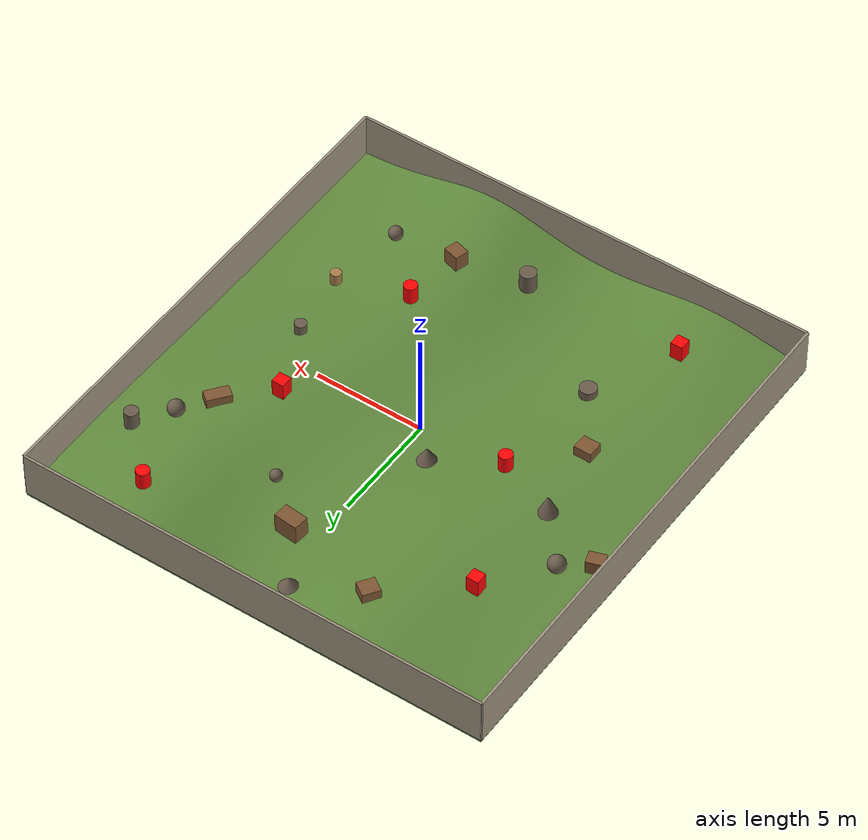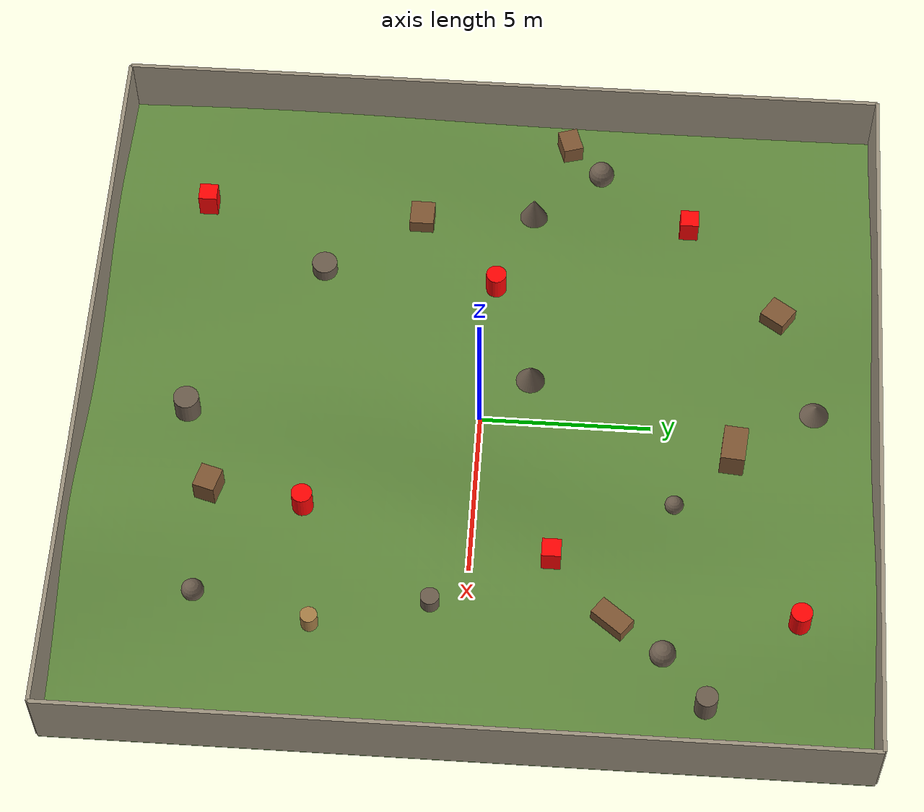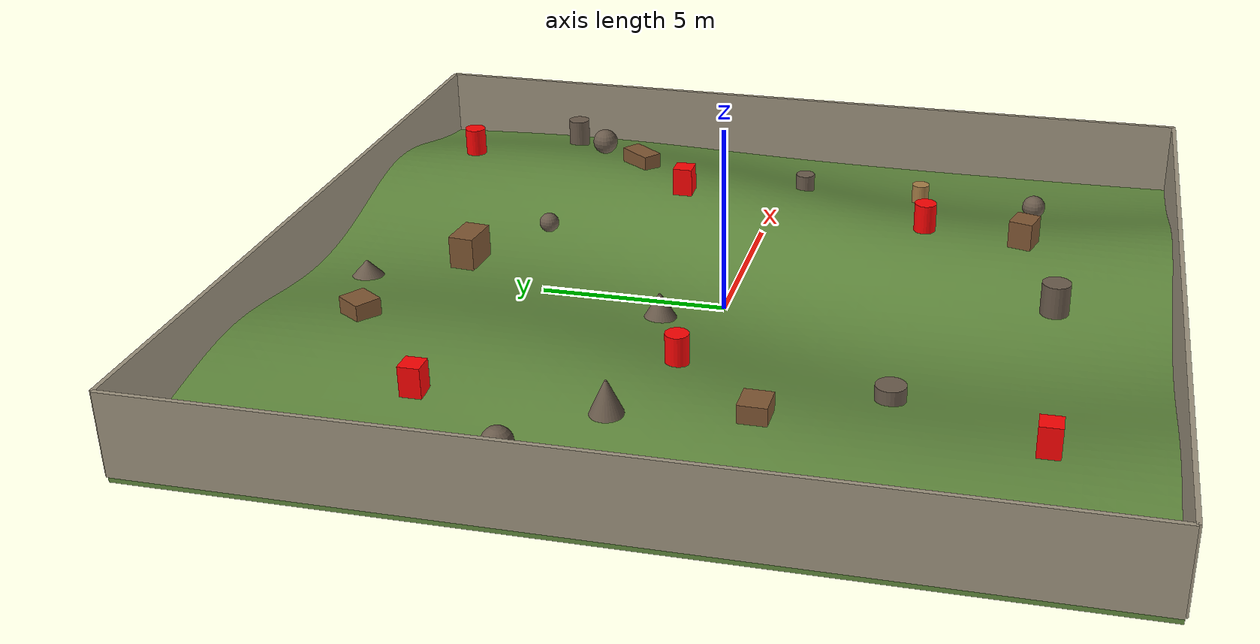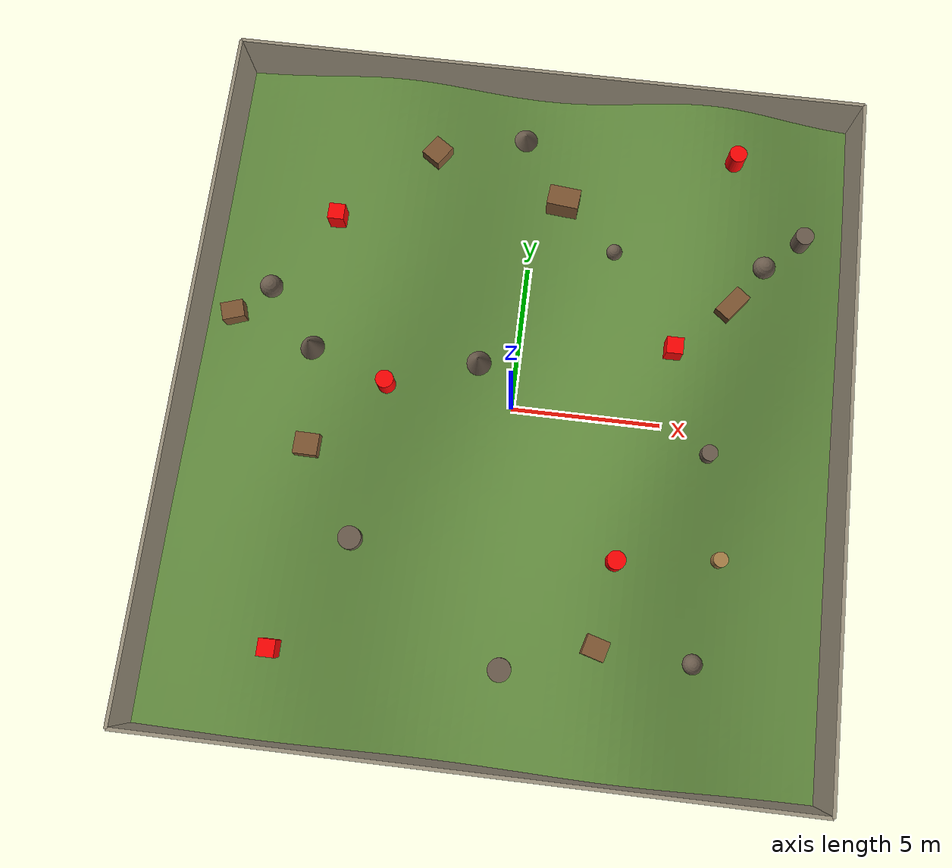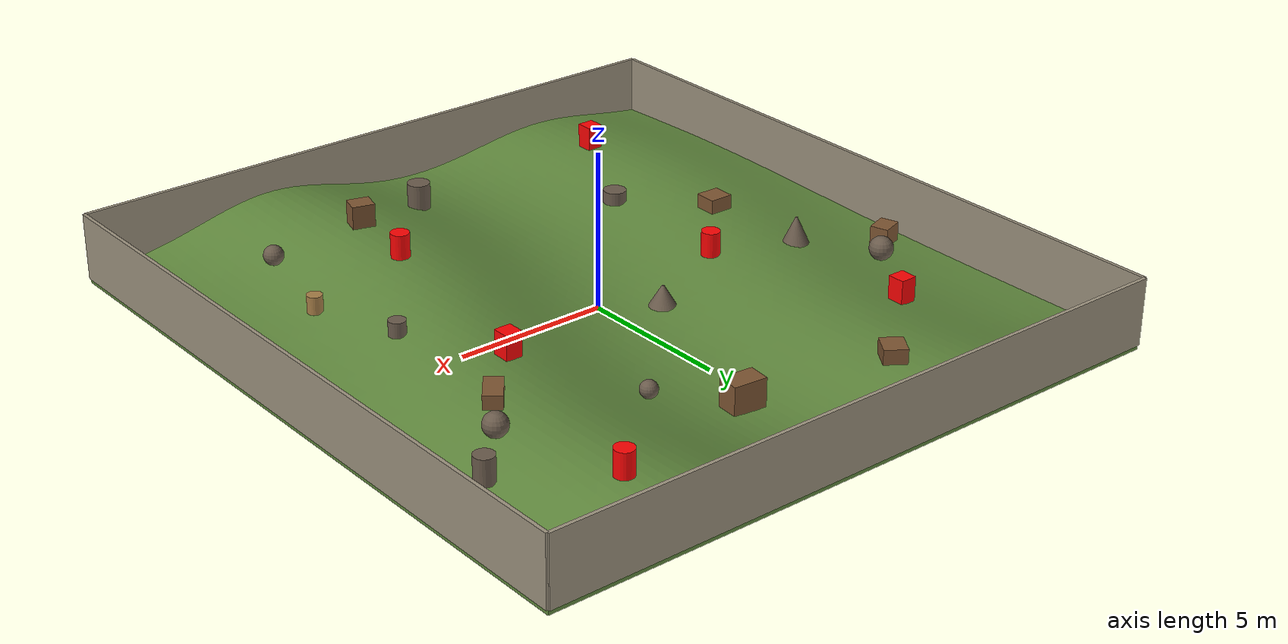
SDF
<?xml version='1.0' encoding='utf-8'?>
<sdf version="1.7">
  <world name="terrain_3">
    <gravity>0 0 -9.8</gravity>
    <plugin name="gazebo_ros_state" filename="libgazebo_ros_state.so">
      <ros>
        <namespace>/gazebo</namespace>
      </ros>
    </plugin>
    <physics name="ode_physics" type="ode">
      <max_step_size>0.001</max_step_size>
      <real_time_factor>1</real_time_factor>
      <real_time_update_rate>1000</real_time_update_rate>
      <ode>
        <solver>
          <type>quick</type>
          <iters>150</iters>
          <sor>1.3</sor>
        </solver>
        <constraints>
          <cfm>0</cfm>
          <erp>0.2</erp>
          <contact_max_correcting_vel>0.2</contact_max_correcting_vel>
          <contact_surface_layer>0.001</contact_surface_layer>
        </constraints>
      </ode>
    </physics>
    <light name="sun" type="directional">
      <pose>0 0 42 0 0 0</pose>
      <diffuse>0.92 0.91 0.88 1</diffuse>
      <specular>0.18 0.18 0.16 1</specular>
      <direction>-0.35 -0.28 -0.9</direction>
      <cast_shadows>true</cast_shadows>
    </light>
    <light name="fill" type="point">
      <pose>0 0 6 0 0 0</pose>
      <diffuse>0.35 0.36 0.34 1</diffuse>
      <specular>0.02 0.02 0.02 1</specular>
      <cast_shadows>false</cast_shadows>
      <attenuation>
        <range>80</range>
        <constant>0.5</constant>
        <linear>0.02</linear>
      </attenuation>
    </light>
    <scene>
      <ambient>0.52 0.56 0.48 1</ambient>
      <background>0.58 0.76 0.92 1</background>
    </scene>
    <gui fullscreen="false">
      <camera name="user_camera">
        <pose>15.09375 -20.7 19.55 0 0.65 2.2</pose>
        <view_controller>orbit</view_controller>
      </camera>
    </gui>
    <model name="terrain_3_structure">
      <static>true</static>
      <link name="structure">
        <collision name="ground_surface_collision">
          <pose>0 0 0 0 0 0</pose>
          <geometry>
            <mesh>
              <uri>3DModel/terrain/surfaces/terrain_3_ground_surface.stl</uri>
            </mesh>
          </geometry>
          <max_contacts>40</max_contacts>
          <surface>
            <friction>
              <ode>
                <mu>8</mu>
                <mu2>8</mu2>
              </ode>
            </friction>
            <contact>
              <ode>
                <kp>1e7</kp>
                <kd>1000</kd>
                <max_vel>0.1</max_vel>
                <min_depth>0.001</min_depth>
              </ode>
            </contact>
          </surface>
        </collision>
        <visual name="ground_surface_visual">
          <pose>0 0 0 0 0 0</pose>
          <geometry>
            <mesh>
              <uri>3DModel/terrain/surfaces/terrain_3_ground_surface.stl</uri>
            </mesh>
          </geometry>
          <material>
            <ambient>0.38 0.54 0.24 1</ambient>
            <diffuse>0.38 0.54 0.24 1</diffuse>
          </material>
        </visual>
        <collision name="rock_box_0_collision">
          <pose>-6.46875 -2.15625 0.952421703 0 0 -0.0157018025</pose>
          <geometry>
            <box>
              <size>0.790625 0.71875 0.4671875</size>
            </box>
          </geometry>
          <max_contacts>40</max_contacts>
          <surface>
            <friction>
              <ode>
                <mu>2</mu>
                <mu2>2</mu2>
              </ode>
            </friction>
            <contact>
              <ode>
                <kp>1e7</kp>
                <kd>1000</kd>
                <max_vel>0.1</max_vel>
                <min_depth>0.001</min_depth>
              </ode>
            </contact>
          </surface>
        </collision>
        <visual name="rock_box_0_visual">
          <pose>-6.46875 -2.15625 0.952421703 0 0 -0.0157018025</pose>
          <geometry>
            <box>
              <size>0.790625 0.71875 0.4671875</size>
            </box>
          </geometry>
          <material>
            <ambient>0.50 0.34 0.20 1</ambient>
            <diffuse>0.50 0.34 0.20 1</diffuse>
          </material>
        </visual>
        <collision name="rock_round_1_collision">
          <pose>2.875 5.75 0.69128339 0 0 0</pose>
          <geometry>
            <sphere>
              <radius>0.273125</radius>
            </sphere>
          </geometry>
          <max_contacts>40</max_contacts>
          <surface>
            <friction>
              <ode>
                <mu>2</mu>
                <mu2>2</mu2>
              </ode>
            </friction>
            <contact>
              <ode>
                <kp>1e7</kp>
                <kd>1000</kd>
                <max_vel>0.1</max_vel>
                <min_depth>0.001</min_depth>
              </ode>
            </contact>
          </surface>
        </collision>
        <visual name="rock_round_1_visual">
          <pose>2.875 5.75 0.69128339 0 0 0</pose>
          <geometry>
            <sphere>
              <radius>0.273125</radius>
            </sphere>
          </geometry>
          <material>
            <ambient>0.42 0.36 0.30 1</ambient>
            <diffuse>0.42 0.36 0.30 1</diffuse>
          </material>
        </visual>
        <collision name="stone_column_2_collision">
          <pose>7.1875 -4.3125 0.735942819 0 0 0</pose>
          <geometry>
            <cylinder>
              <radius>0.244375</radius>
              <length>0.5750000000000001</length>
            </cylinder>
          </geometry>
          <max_contacts>40</max_contacts>
          <surface>
            <friction>
              <ode>
                <mu>2</mu>
                <mu2>2</mu2>
              </ode>
            </friction>
            <contact>
              <ode>
                <kp>1e7</kp>
                <kd>1000</kd>
                <max_vel>0.1</max_vel>
                <min_depth>0.001</min_depth>
              </ode>
            </contact>
          </surface>
        </collision>
        <visual name="stone_column_2_visual">
          <pose>7.1875 -4.3125 0.735942819 0 0 0</pose>
          <geometry>
            <cylinder>
              <radius>0.244375</radius>
              <length>0.5750000000000001</length>
            </cylinder>
          </geometry>
          <material>
            <ambient>0.66 0.50 0.28 1</ambient>
            <diffuse>0.66 0.50 0.28 1</diffuse>
          </material>
        </visual>
        <collision name="rock_box_3_collision">
          <pose>-3.59375 8.625 0.913835771 0 0 0.974073031</pose>
          <geometry>
            <box>
              <size>0.790625 0.71875 0.4671875</size>
            </box>
          </geometry>
          <max_contacts>40</max_contacts>
          <surface>
            <friction>
              <ode>
                <mu>2</mu>
                <mu2>2</mu2>
              </ode>
            </friction>
            <contact>
              <ode>
                <kp>1e7</kp>
                <kd>1000</kd>
                <max_vel>0.1</max_vel>
                <min_depth>0.001</min_depth>
              </ode>
            </contact>
          </surface>
        </collision>
        <visual name="rock_box_3_visual">
          <pose>-3.59375 8.625 0.913835771 0 0 0.974073031</pose>
          <geometry>
            <box>
              <size>0.790625 0.71875 0.4671875</size>
            </box>
          </geometry>
          <material>
            <ambient>0.50 0.34 0.20 1</ambient>
            <diffuse>0.50 0.34 0.20 1</diffuse>
          </material>
        </visual>
        <collision name="boundary_0_collision">
          <pose>0 -11.5 1.00625 0 0 0</pose>
          <geometry>
            <box>
              <size>21.5625 0.115 2.15625</size>
            </box>
          </geometry>
          <max_contacts>40</max_contacts>
          <surface>
            <friction>
              <ode>
                <mu>2</mu>
                <mu2>2</mu2>
              </ode>
            </friction>
            <contact>
              <ode>
                <kp>1e7</kp>
                <kd>1000</kd>
                <max_vel>0.1</max_vel>
                <min_depth>0.001</min_depth>
              </ode>
            </contact>
          </surface>
        </collision>
        <visual name="boundary_0_visual">
          <pose>0 -11.5 1.00625 0 0 0</pose>
          <geometry>
            <box>
              <size>21.5625 0.115 2.15625</size>
            </box>
          </geometry>
          <material>
            <ambient>0.62 0.58 0.50 1</ambient>
            <diffuse>0.62 0.58 0.50 1</diffuse>
          </material>
        </visual>
        <collision name="boundary_1_collision">
          <pose>10.78125 0 1.00625 0 0 1.57079633</pose>
          <geometry>
            <box>
              <size>23 0.115 2.15625</size>
            </box>
          </geometry>
          <max_contacts>40</max_contacts>
          <surface>
            <friction>
              <ode>
                <mu>2</mu>
                <mu2>2</mu2>
              </ode>
            </friction>
            <contact>
              <ode>
                <kp>1e7</kp>
                <kd>1000</kd>
                <max_vel>0.1</max_vel>
                <min_depth>0.001</min_depth>
              </ode>
            </contact>
          </surface>
        </collision>
        <visual name="boundary_1_visual">
          <pose>10.78125 0 1.00625 0 0 1.57079633</pose>
          <geometry>
            <box>
              <size>23 0.115 2.15625</size>
            </box>
          </geometry>
          <material>
            <ambient>0.62 0.58 0.50 1</ambient>
            <diffuse>0.62 0.58 0.50 1</diffuse>
          </material>
        </visual>
        <collision name="boundary_2_collision">
          <pose>0 11.5 1.00625 0 0 3.14159265</pose>
          <geometry>
            <box>
              <size>21.5625 0.115 2.15625</size>
            </box>
          </geometry>
          <max_contacts>40</max_contacts>
          <surface>
            <friction>
              <ode>
                <mu>2</mu>
                <mu2>2</mu2>
              </ode>
            </friction>
            <contact>
              <ode>
                <kp>1e7</kp>
                <kd>1000</kd>
                <max_vel>0.1</max_vel>
                <min_depth>0.001</min_depth>
              </ode>
            </contact>
          </surface>
        </collision>
        <visual name="boundary_2_visual">
          <pose>0 11.5 1.00625 0 0 3.14159265</pose>
          <geometry>
            <box>
              <size>21.5625 0.115 2.15625</size>
            </box>
          </geometry>
          <material>
            <ambient>0.62 0.58 0.50 1</ambient>
            <diffuse>0.62 0.58 0.50 1</diffuse>
          </material>
        </visual>
        <collision name="boundary_3_collision">
          <pose>-10.78125 0 1.00625 0 0 -1.57079633</pose>
          <geometry>
            <box>
              <size>23 0.115 2.15625</size>
            </box>
          </geometry>
          <max_contacts>40</max_contacts>
          <surface>
            <friction>
              <ode>
                <mu>2</mu>
                <mu2>2</mu2>
              </ode>
            </friction>
            <contact>
              <ode>
                <kp>1e7</kp>
                <kd>1000</kd>
                <max_vel>0.1</max_vel>
                <min_depth>0.001</min_depth>
              </ode>
            </contact>
          </surface>
        </collision>
        <visual name="boundary_3_visual">
          <pose>-10.78125 0 1.00625 0 0 -1.57079633</pose>
          <geometry>
            <box>
              <size>23 0.115 2.15625</size>
            </box>
          </geometry>
          <material>
            <ambient>0.62 0.58 0.50 1</ambient>
            <diffuse>0.62 0.58 0.50 1</diffuse>
          </material>
        </visual>
        <collision name="irregular_prop_0_collision">
          <pose>6.90887802 4.11231541 1.25627862 0 0 -2.23321854</pose>
          <geometry>
            <box>
              <size>1.08607201 0.571727139 0.437740642</size>
            </box>
          </geometry>
          <max_contacts>40</max_contacts>
          <surface>
            <friction>
              <ode>
                <mu>2</mu>
                <mu2>2</mu2>
              </ode>
            </friction>
            <contact>
              <ode>
                <kp>1e7</kp>
                <kd>1000</kd>
                <max_vel>0.1</max_vel>
                <min_depth>0.001</min_depth>
              </ode>
            </contact>
          </surface>
        </collision>
        <visual name="irregular_prop_0_visual">
          <pose>6.90887802 4.11231541 1.25627862 0 0 -2.23321854</pose>
          <geometry>
            <box>
              <size>1.08607201 0.571727139 0.437740642</size>
            </box>
          </geometry>
          <material>
            <ambient>0.50 0.34 0.20 1</ambient>
            <diffuse>0.50 0.34 0.20 1</diffuse>
          </material>
        </visual>
        <collision name="irregular_prop_1_collision">
          <pose>-4.66218717 -4.97635042 0.677755533 0 0 1.16385764</pose>
          <geometry>
            <cylinder>
              <radius>0.376704444662909</radius>
              <length>0.4266029525812986</length>
            </cylinder>
          </geometry>
          <max_contacts>40</max_contacts>
          <surface>
            <friction>
              <ode>
                <mu>2</mu>
                <mu2>2</mu2>
              </ode>
            </friction>
            <contact>
              <ode>
                <kp>1e7</kp>
                <kd>1000</kd>
                <max_vel>0.1</max_vel>
                <min_depth>0.001</min_depth>
              </ode>
            </contact>
          </surface>
        </collision>
        <visual name="irregular_prop_1_visual">
          <pose>-4.66218717 -4.97635042 0.677755533 0 0 1.16385764</pose>
          <geometry>
            <cylinder>
              <radius>0.376704444662909</radius>
              <length>0.4266029525812986</length>
            </cylinder>
          </geometry>
          <material>
            <ambient>0.42 0.36 0.30 1</ambient>
            <diffuse>0.42 0.36 0.30 1</diffuse>
          </material>
        </visual>
        <collision name="irregular_prop_2_collision">
          <pose>7.88971715 5.54254733 1.28310277 0 0 2.89013118</pose>
          <geometry>
            <sphere>
              <radius>0.3729867678205133</radius>
            </sphere>
          </geometry>
          <max_contacts>40</max_contacts>
          <surface>
            <friction>
              <ode>
                <mu>2</mu>
                <mu2>2</mu2>
              </ode>
            </friction>
            <contact>
              <ode>
                <kp>1e7</kp>
                <kd>1000</kd>
                <max_vel>0.1</max_vel>
                <min_depth>0.001</min_depth>
              </ode>
            </contact>
          </surface>
        </collision>
        <visual name="irregular_prop_2_visual">
          <pose>7.88971715 5.54254733 1.28310277 0 0 2.89013118</pose>
          <geometry>
            <sphere>
              <radius>0.3729867678205133</radius>
            </sphere>
          </geometry>
          <material>
            <ambient>0.42 0.36 0.30 1</ambient>
            <diffuse>0.42 0.36 0.30 1</diffuse>
          </material>
        </visual>
        <collision name="irregular_prop_3_collision">
          <pose>0 0 0 0 0 0</pose>
          <geometry>
            <mesh>
              <uri>3DModel/terrain/surfaces/terrain_3_irregular_prop_3.stl</uri>
            </mesh>
          </geometry>
          <max_contacts>40</max_contacts>
          <surface>
            <friction>
              <ode>
                <mu>8</mu>
                <mu2>8</mu2>
              </ode>
            </friction>
            <contact>
              <ode>
                <kp>1e7</kp>
                <kd>1000</kd>
                <max_vel>0.1</max_vel>
                <min_depth>0.001</min_depth>
              </ode>
            </contact>
          </surface>
        </collision>
        <visual name="irregular_prop_3_visual">
          <pose>0 0 0 0 0 0</pose>
          <geometry>
            <mesh>
              <uri>3DModel/terrain/surfaces/terrain_3_irregular_prop_3.stl</uri>
            </mesh>
          </geometry>
          <material>
            <ambient>0.42 0.36 0.30 1</ambient>
            <diffuse>0.42 0.36 0.30 1</diffuse>
          </material>
        </visual>
        <collision name="irregular_prop_4_collision">
          <pose>-9.77912039 2.18786757 0.436348553 0 0 1.88401226</pose>
          <geometry>
            <box>
              <size>0.599985752 0.755719187 0.617978487</size>
            </box>
          </geometry>
          <max_contacts>40</max_contacts>
          <surface>
            <friction>
              <ode>
                <mu>2</mu>
                <mu2>2</mu2>
              </ode>
            </friction>
            <contact>
              <ode>
                <kp>1e7</kp>
                <kd>1000</kd>
                <max_vel>0.1</max_vel>
                <min_depth>0.001</min_depth>
              </ode>
            </contact>
          </surface>
        </collision>
        <visual name="irregular_prop_4_visual">
          <pose>-9.77912039 2.18786757 0.436348553 0 0 1.88401226</pose>
          <geometry>
            <box>
              <size>0.599985752 0.755719187 0.617978487</size>
            </box>
          </geometry>
          <material>
            <ambient>0.50 0.34 0.20 1</ambient>
            <diffuse>0.50 0.34 0.20 1</diffuse>
          </material>
        </visual>
        <collision name="irregular_prop_5_collision">
          <pose>0.596500179 -8.4936315 0.947151085 0 0 1.3066875</pose>
          <geometry>
            <cylinder>
              <radius>0.3707488929107403</radius>
              <length>0.8595618172073382</length>
            </cylinder>
          </geometry>
          <max_contacts>40</max_contacts>
          <surface>
            <friction>
              <ode>
                <mu>2</mu>
                <mu2>2</mu2>
              </ode>
            </friction>
            <contact>
              <ode>
                <kp>1e7</kp>
                <kd>1000</kd>
                <max_vel>0.1</max_vel>
                <min_depth>0.001</min_depth>
              </ode>
            </contact>
          </surface>
        </collision>
        <visual name="irregular_prop_5_visual">
          <pose>0.596500179 -8.4936315 0.947151085 0 0 1.3066875</pose>
          <geometry>
            <cylinder>
              <radius>0.3707488929107403</radius>
              <length>0.8595618172073382</length>
            </cylinder>
          </geometry>
          <material>
            <ambient>0.42 0.36 0.30 1</ambient>
            <diffuse>0.42 0.36 0.30 1</diffuse>
          </material>
        </visual>
        <collision name="irregular_prop_6_collision">
          <pose>6.55230586 -7.63756672 0.87696483 0 0 0.14775727</pose>
          <geometry>
            <sphere>
              <radius>0.3223171556145211</radius>
            </sphere>
          </geometry>
          <max_contacts>40</max_contacts>
          <surface>
            <friction>
              <ode>
                <mu>2</mu>
                <mu2>2</mu2>
              </ode>
            </friction>
            <contact>
              <ode>
                <kp>1e7</kp>
                <kd>1000</kd>
                <max_vel>0.1</max_vel>
                <min_depth>0.001</min_depth>
              </ode>
            </contact>
          </surface>
        </collision>
        <visual name="irregular_prop_6_visual">
          <pose>6.55230586 -7.63756672 0.87696483 0 0 0.14775727</pose>
          <geometry>
            <sphere>
              <radius>0.3223171556145211</radius>
            </sphere>
          </geometry>
          <material>
            <ambient>0.42 0.36 0.30 1</ambient>
            <diffuse>0.42 0.36 0.30 1</diffuse>
          </material>
        </visual>
        <collision name="irregular_prop_7_collision">
          <pose>0 0 0 0 0 0</pose>
          <geometry>
            <mesh>
              <uri>3DModel/terrain/surfaces/terrain_3_irregular_prop_7.stl</uri>
            </mesh>
          </geometry>
          <max_contacts>40</max_contacts>
          <surface>
            <friction>
              <ode>
                <mu>8</mu>
                <mu2>8</mu2>
              </ode>
            </friction>
            <contact>
              <ode>
                <kp>1e7</kp>
                <kd>1000</kd>
                <max_vel>0.1</max_vel>
                <min_depth>0.001</min_depth>
              </ode>
            </contact>
          </surface>
        </collision>
        <visual name="irregular_prop_7_visual">
          <pose>0 0 0 0 0 0</pose>
          <geometry>
            <mesh>
              <uri>3DModel/terrain/surfaces/terrain_3_irregular_prop_7.stl</uri>
            </mesh>
          </geometry>
          <material>
            <ambient>0.42 0.36 0.30 1</ambient>
            <diffuse>0.42 0.36 0.30 1</diffuse>
          </material>
        </visual>
        <collision name="irregular_prop_8_collision">
          <pose>3.44821226 -7.49859829 1.45129688 0 0 -1.84800182</pose>
          <geometry>
            <box>
              <size>0.638164364 0.730013705 0.750693789</size>
            </box>
          </geometry>
          <max_contacts>40</max_contacts>
          <surface>
            <friction>
              <ode>
                <mu>2</mu>
                <mu2>2</mu2>
              </ode>
            </friction>
            <contact>
              <ode>
                <kp>1e7</kp>
                <kd>1000</kd>
                <max_vel>0.1</max_vel>
                <min_depth>0.001</min_depth>
              </ode>
            </contact>
          </surface>
        </collision>
        <visual name="irregular_prop_8_visual">
          <pose>3.44821226 -7.49859829 1.45129688 0 0 -1.84800182</pose>
          <geometry>
            <box>
              <size>0.638164364 0.730013705 0.750693789</size>
            </box>
          </geometry>
          <material>
            <ambient>0.50 0.34 0.20 1</ambient>
            <diffuse>0.50 0.34 0.20 1</diffuse>
          </material>
        </visual>
        <collision name="irregular_prop_9_collision">
          <pose>9.16649709 6.78469233 1.02531175 0 0 -2.08421318</pose>
          <geometry>
            <cylinder>
              <radius>0.30991242413457737</radius>
              <length>0.8232788047438537</length>
            </cylinder>
          </geometry>
          <max_contacts>40</max_contacts>
          <surface>
            <friction>
              <ode>
                <mu>2</mu>
                <mu2>2</mu2>
              </ode>
            </friction>
            <contact>
              <ode>
                <kp>1e7</kp>
                <kd>1000</kd>
                <max_vel>0.1</max_vel>
                <min_depth>0.001</min_depth>
              </ode>
            </contact>
          </surface>
        </collision>
        <visual name="irregular_prop_9_visual">
          <pose>9.16649709 6.78469233 1.02531175 0 0 -2.08421318</pose>
          <geometry>
            <cylinder>
              <radius>0.30991242413457737</radius>
              <length>0.8232788047438537</length>
            </cylinder>
          </geometry>
          <material>
            <ambient>0.42 0.36 0.30 1</ambient>
            <diffuse>0.42 0.36 0.30 1</diffuse>
          </material>
        </visual>
        <collision name="irregular_prop_10_collision">
          <pose>-8.62726043 3.19524067 0.615970121 0 0 0.92838785</pose>
          <geometry>
            <sphere>
              <radius>0.3875258442588971</radius>
            </sphere>
          </geometry>
          <max_contacts>40</max_contacts>
          <surface>
            <friction>
              <ode>
                <mu>2</mu>
                <mu2>2</mu2>
              </ode>
            </friction>
            <contact>
              <ode>
                <kp>1e7</kp>
                <kd>1000</kd>
                <max_vel>0.1</max_vel>
                <min_depth>0.001</min_depth>
              </ode>
            </contact>
          </surface>
        </collision>
        <visual name="irregular_prop_10_visual">
          <pose>-8.62726043 3.19524067 0.615970121 0 0 0.92838785</pose>
          <geometry>
            <sphere>
              <radius>0.3875258442588971</radius>
            </sphere>
          </geometry>
          <material>
            <ambient>0.42 0.36 0.30 1</ambient>
            <diffuse>0.42 0.36 0.30 1</diffuse>
          </material>
        </visual>
        <collision name="irregular_prop_11_collision">
          <pose>0 0 0 0 0 0</pose>
          <geometry>
            <mesh>
              <uri>3DModel/terrain/surfaces/terrain_3_irregular_prop_11.stl</uri>
            </mesh>
          </geometry>
          <max_contacts>40</max_contacts>
          <surface>
            <friction>
              <ode>
                <mu>8</mu>
                <mu2>8</mu2>
              </ode>
            </friction>
            <contact>
              <ode>
                <kp>1e7</kp>
                <kd>1000</kd>
                <max_vel>0.1</max_vel>
                <min_depth>0.001</min_depth>
              </ode>
            </contact>
          </surface>
        </collision>
        <visual name="irregular_prop_11_visual">
          <pose>0 0 0 0 0 0</pose>
          <geometry>
            <mesh>
              <uri>3DModel/terrain/surfaces/terrain_3_irregular_prop_11.stl</uri>
            </mesh>
          </geometry>
          <material>
            <ambient>0.42 0.36 0.30 1</ambient>
            <diffuse>0.42 0.36 0.30 1</diffuse>
          </material>
        </visual>
        <collision name="irregular_prop_12_collision">
          <pose>0.942192993 7.42165578 0.642770087 0 0 -0.0976127434</pose>
          <geometry>
            <box>
              <size>1.08271553 0.701748873 0.912867309</size>
            </box>
          </geometry>
          <max_contacts>40</max_contacts>
          <surface>
            <friction>
              <ode>
                <mu>2</mu>
                <mu2>2</mu2>
              </ode>
            </friction>
            <contact>
              <ode>
                <kp>1e7</kp>
                <kd>1000</kd>
                <max_vel>0.1</max_vel>
                <min_depth>0.001</min_depth>
              </ode>
            </contact>
          </surface>
        </collision>
        <visual name="irregular_prop_12_visual">
          <pose>0.942192993 7.42165578 0.642770087 0 0 -0.0976127434</pose>
          <geometry>
            <box>
              <size>1.08271553 0.701748873 0.912867309</size>
            </box>
          </geometry>
          <material>
            <ambient>0.50 0.34 0.20 1</ambient>
            <diffuse>0.50 0.34 0.20 1</diffuse>
          </material>
        </visual>
        <collision name="irregular_prop_13_collision">
          <pose>6.53913204 -0.975745394 1.07290332 0 0 -0.606225655</pose>
          <geometry>
            <cylinder>
              <radius>0.26815287130213666</radius>
              <length>0.48223083261854904</length>
            </cylinder>
          </geometry>
          <max_contacts>40</max_contacts>
          <surface>
            <friction>
              <ode>
                <mu>2</mu>
                <mu2>2</mu2>
              </ode>
            </friction>
            <contact>
              <ode>
                <kp>1e7</kp>
                <kd>1000</kd>
                <max_vel>0.1</max_vel>
                <min_depth>0.001</min_depth>
              </ode>
            </contact>
          </surface>
        </collision>
        <visual name="irregular_prop_13_visual">
          <pose>6.53913204 -0.975745394 1.07290332 0 0 -0.606225655</pose>
          <geometry>
            <cylinder>
              <radius>0.26815287130213666</radius>
              <length>0.48223083261854904</length>
            </cylinder>
          </geometry>
          <material>
            <ambient>0.42 0.36 0.30 1</ambient>
            <diffuse>0.42 0.36 0.30 1</diffuse>
          </material>
        </visual>
      </link>
    </model>
    <model name="moving_obstacle_1">
      <static>true</static>
      <pose>-6.59295721 -8.66219925 1.10740447 0 0 0</pose>
      <link name="obstacle">
        <collision name="body_collision">
          <pose>0 0 0 0 0 0</pose>
          <geometry>
            <box>
              <size>0.55 0.55 0.8</size>
            </box>
          </geometry>
          <max_contacts>40</max_contacts>
          <surface>
            <friction>
              <ode>
                <mu>2</mu>
                <mu2>2</mu2>
              </ode>
            </friction>
            <contact>
              <ode>
                <kp>1e7</kp>
                <kd>1000</kd>
                <max_vel>0.1</max_vel>
                <min_depth>0.001</min_depth>
              </ode>
            </contact>
          </surface>
        </collision>
        <visual name="body_visual">
          <pose>0 0 0 0 0 0</pose>
          <geometry>
            <box>
              <size>0.55 0.55 0.8</size>
            </box>
          </geometry>
          <material>
            <ambient>1 0.015 0.015 1</ambient>
            <diffuse>1 0.015 0.015 1</diffuse>
            <emissive>0.25 0 0 1</emissive>
          </material>
        </visual>
      </link>
      <plugin name="path_motion" filename="libmultimap_obstacle_motion.so">
        <speed>0.25</speed>
        <start_delay>0.0</start_delay>
        <waypoints>
          <point>-6.59295721 -8.66219925 1.10740447</point>
          <point>-6.62219242 -8.53083086 1.10795941</point>
          <point>-6.65142764 -8.39946246 1.10855894</point>
          <point>-6.68066285 -8.26809406 1.10919886</point>
          <point>-6.70989806 -8.13672566 1.10987434</point>
          <point>-6.73913327 -8.00535727 1.11057987</point>
          <point>-6.76836849 -7.87398887 1.11130924</point>
          <point>-6.7976037 -7.74262047 1.11205556</point>
          <point>-6.82683891 -7.61125208 1.11281124</point>
          <point>-6.85607412 -7.47988368 1.11356794</point>
          <point>-6.88530934 -7.34851528 1.11431662</point>
          <point>-6.91454455 -7.21714689 1.11504753</point>
          <point>-6.94377976 -7.08577849 1.11575019</point>
          <point>-6.97301497 -6.95441009 1.11641343</point>
          <point>-7.00225019 -6.8230417 1.11702537</point>
          <point>-7.0314854 -6.6916733 1.11757345</point>
          <point>-7.06072061 -6.5603049 1.1180445</point>
          <point>-7.08995582 -6.42893651 1.11842469</point>
          <point>-7.11919104 -6.29756811 1.11869964</point>
          <point>-7.14842625 -6.16619971 1.1188544</point>
          <point>-7.17766146 -6.03483132 1.11887356</point>
          <point>-7.20689667 -5.90346292 1.11874128</point>
          <point>-7.23613189 -5.77209452 1.11844135</point>
          <point>-7.2653671 -5.64072613 1.11795726</point>
          <point>-7.29460231 -5.50935773 1.11727231</point>
          <point>-7.32383752 -5.37798933 1.11636966</point>
          <point>-7.35307274 -5.24662094 1.11523245</point>
          <point>-7.38230795 -5.11525254 1.11384389</point>
          <point>-7.41154316 -4.98388414 1.11218737</point>
          <point>-7.44077837 -4.85251575 1.11024658</point>
          <point>-7.47001359 -4.72114735 1.10800562</point>
          <point>-7.4992488 -4.58977895 1.10544912</point>
          <point>-7.52848401 -4.45841056 1.10256238</point>
          <point>-7.55771922 -4.32704216 1.09933148</point>
          <point>-7.58695444 -4.19567376 1.09574343</point>
          <point>-7.61618965 -4.06430537 1.09178629</point>
          <point>-7.64542486 -3.93293697 1.08744928</point>
          <point>-7.67466007 -3.80156857 1.08272295</point>
          <point>-7.70389529 -3.67020018 1.07759924</point>
          <point>-7.7331305 -3.53883178 1.07207164</point>
        </waypoints>
      </plugin>
    </model>
    <model name="moving_obstacle_2">
      <static>true</static>
      <pose>-4.22220751 0.219390439 1.01140584 0 0 0</pose>
      <link name="obstacle">
        <collision name="body_collision">
          <pose>0 0 0 0 0 0</pose>
          <geometry>
            <cylinder>
              <radius>0.3</radius>
              <length>0.8</length>
            </cylinder>
          </geometry>
          <max_contacts>40</max_contacts>
          <surface>
            <friction>
              <ode>
                <mu>2</mu>
                <mu2>2</mu2>
              </ode>
            </friction>
            <contact>
              <ode>
                <kp>1e7</kp>
                <kd>1000</kd>
                <max_vel>0.1</max_vel>
                <min_depth>0.001</min_depth>
              </ode>
            </contact>
          </surface>
        </collision>
        <visual name="body_visual">
          <pose>0 0 0 0 0 0</pose>
          <geometry>
            <cylinder>
              <radius>0.3</radius>
              <length>0.8</length>
            </cylinder>
          </geometry>
          <material>
            <ambient>1 0.015 0.015 1</ambient>
            <diffuse>1 0.015 0.015 1</diffuse>
            <emissive>0.25 0 0 1</emissive>
          </material>
        </visual>
      </link>
      <plugin name="path_motion" filename="libmultimap_obstacle_motion.so">
        <speed>0.65</speed>
        <start_delay>0.25</start_delay>
        <waypoints>
          <point>-4.22220751 0.219390439 1.01140584</point>
          <point>-4.23732964 0.135957524 1.00968371</point>
          <point>-4.25245178 0.0525246091 1.00794958</point>
          <point>-4.26757392 -0.030908306 1.00620497</point>
          <point>-4.28269606 -0.114341221 1.00445144</point>
          <point>-4.2978182 -0.197774136 1.00269057</point>
          <point>-4.31294034 -0.281207051 1.00092397</point>
          <point>-4.32806248 -0.364639966 0.999153277</point>
          <point>-4.34318462 -0.448072881 0.997380161</point>
          <point>-4.35830676 -0.531505796 0.995606311</point>
          <point>-4.3734289 -0.614938711 0.993833439</point>
          <point>-4.38855104 -0.698371626 0.992063277</point>
          <point>-4.40367318 -0.781804541 0.990297576</point>
          <point>-4.41879532 -0.865237456 0.988538102</point>
          <point>-4.43391746 -0.948670371 0.986786637</point>
          <point>-4.4490396 -1.03210329 0.985044973</point>
          <point>-4.46416174 -1.1155362 0.983314914</point>
          <point>-4.47928388 -1.19896912 0.981598269</point>
          <point>-4.49440602 -1.28240203 0.979896857</point>
          <point>-4.50952816 -1.36583495 0.978212496</point>
          <point>-4.5246503 -1.44926786 0.97654701</point>
          <point>-4.53977244 -1.53270078 0.97490222</point>
          <point>-4.55489458 -1.61613369 0.973279945</point>
          <point>-4.57001672 -1.69956661 0.971682</point>
          <point>-4.58513886 -1.78299952 0.970110195</point>
          <point>-4.600261 -1.86643244 0.968566329</point>
          <point>-4.61538314 -1.94986535 0.967052194</point>
          <point>-4.63050528 -2.03329827 0.965569568</point>
          <point>-4.64562742 -2.11673118 0.964120217</point>
          <point>-4.66074956 -2.2001641 0.96270589</point>
          <point>-4.6758717 -2.28359701 0.961328321</point>
          <point>-4.69099384 -2.36702993 0.959989225</point>
          <point>-4.70611598 -2.45046284 0.958690297</point>
          <point>-4.72123812 -2.53389576 0.957433209</point>
          <point>-4.73636026 -2.61732867 0.956219612</point>
          <point>-4.7514824 -2.70076159 0.955051133</point>
          <point>-4.76660454 -2.7841945 0.953929372</point>
          <point>-4.78172668 -2.86762742 0.952855904</point>
          <point>-4.79684881 -2.95106033 0.951832275</point>
          <point>-4.81197095 -3.03449325 0.950860001</point>
        </waypoints>
      </plugin>
    </model>
    <model name="moving_obstacle_3">
      <static>true</static>
      <pose>-6.71526166 5.91804079 0.864489766 0 0 0</pose>
      <link name="obstacle">
        <collision name="body_collision">
          <pose>0 0 0 0 0 0</pose>
          <geometry>
            <box>
              <size>0.55 0.55 0.8</size>
            </box>
          </geometry>
          <max_contacts>40</max_contacts>
          <surface>
            <friction>
              <ode>
                <mu>2</mu>
                <mu2>2</mu2>
              </ode>
            </friction>
            <contact>
              <ode>
                <kp>1e7</kp>
                <kd>1000</kd>
                <max_vel>0.1</max_vel>
                <min_depth>0.001</min_depth>
              </ode>
            </contact>
          </surface>
        </collision>
        <visual name="body_visual">
          <pose>0 0 0 0 0 0</pose>
          <geometry>
            <box>
              <size>0.55 0.55 0.8</size>
            </box>
          </geometry>
          <material>
            <ambient>1 0.015 0.015 1</ambient>
            <diffuse>1 0.015 0.015 1</diffuse>
            <emissive>0.25 0 0 1</emissive>
          </material>
        </visual>
      </link>
      <plugin name="path_motion" filename="libmultimap_obstacle_motion.so">
        <speed>0.4</speed>
        <start_delay>0.5</start_delay>
        <waypoints>
          <point>-6.71526166 5.91804079 0.864489766</point>
          <point>-6.72304987 6.01110794 0.862169942</point>
          <point>-6.73083808 6.1041751 0.859961287</point>
          <point>-6.73862629 6.19724226 0.857864536</point>
          <point>-6.74641451 6.29030941 0.855880323</point>
          <point>-6.75420272 6.38337657 0.854009194</point>
          <point>-6.76199093 6.47644372 0.852251601</point>
          <point>-6.76977914 6.56951088 0.850607914</point>
          <point>-6.77756735 6.66257804 0.849078419</point>
          <point>-6.78535556 6.75564519 0.847663324</point>
          <point>-6.79314378 6.84871235 0.846362762</point>
          <point>-6.80093199 6.94177951 0.845176794</point>
          <point>-6.8087202 7.03484666 0.844105411</point>
          <point>-6.81650841 7.12791382 0.843148537</point>
          <point>-6.82429662 7.22098098 0.842306033</point>
          <point>-6.83208483 7.31404813 0.841577696</point>
          <point>-6.83987305 7.40711529 0.840963263</point>
          <point>-6.84766126 7.50018244 0.840462412</point>
          <point>-6.85544947 7.5932496 0.840074766</point>
          <point>-6.86323768 7.68631676 0.839799887</point>
          <point>-6.87102589 7.77938391 0.839637288</point>
          <point>-6.87881411 7.87245107 0.839586423</point>
          <point>-6.88660232 7.96551823 0.839646694</point>
          <point>-6.89439053 8.05858538 0.839817451</point>
          <point>-6.90217874 8.15165254 0.84009799</point>
          <point>-6.90996695 8.2447197 0.840487553</point>
          <point>-6.91775516 8.33778685 0.84098533</point>
          <point>-6.92554338 8.43085401 0.841590458</point>
          <point>-6.93333159 8.52392116 0.84230202</point>
          <point>-6.9411198 8.61698832 0.843119043</point>
          <point>-6.94890801 8.71005548 0.844040502</point>
          <point>-6.95669622 8.80312263 0.845065311</point>
          <point>-6.96448443 8.89618979 0.846192333</point>
          <point>-6.97227265 8.98925695 0.847420369</point>
          <point>-6.98006086 9.0823241 0.848748162</point>
          <point>-6.98784907 9.17539126 0.850174395</point>
          <point>-6.99563728 9.26845841 0.851697691</point>
          <point>-7.00342549 9.36152557 0.853316608</point>
          <point>-7.01121371 9.45459273 0.855029642</point>
          <point>-7.01900192 9.54765988 0.856835225</point>
        </waypoints>
      </plugin>
    </model>
    <model name="moving_obstacle_4">
      <static>true</static>
      <pose>3.82040214 -4.78920592 1.4777073 0 0 0</pose>
      <link name="obstacle">
        <collision name="body_collision">
          <pose>0 0 0 0 0 0</pose>
          <geometry>
            <cylinder>
              <radius>0.3</radius>
              <length>0.8</length>
            </cylinder>
          </geometry>
          <max_contacts>40</max_contacts>
          <surface>
            <friction>
              <ode>
                <mu>2</mu>
                <mu2>2</mu2>
              </ode>
            </friction>
            <contact>
              <ode>
                <kp>1e7</kp>
                <kd>1000</kd>
                <max_vel>0.1</max_vel>
                <min_depth>0.001</min_depth>
              </ode>
            </contact>
          </surface>
        </collision>
        <visual name="body_visual">
          <pose>0 0 0 0 0 0</pose>
          <geometry>
            <cylinder>
              <radius>0.3</radius>
              <length>0.8</length>
            </cylinder>
          </geometry>
          <material>
            <ambient>1 0.015 0.015 1</ambient>
            <diffuse>1 0.015 0.015 1</diffuse>
            <emissive>0.25 0 0 1</emissive>
          </material>
        </visual>
      </link>
      <plugin name="path_motion" filename="libmultimap_obstacle_motion.so">
        <speed>0.8</speed>
        <start_delay>0.75</start_delay>
        <waypoints>
          <point>3.82040214 -4.78920592 1.4777073</point>
          <point>3.89099835 -4.83649179 1.47620043</point>
          <point>3.96159456 -4.88377766 1.47370319</point>
          <point>4.03219077 -4.93106352 1.47022837</point>
          <point>4.10278698 -4.97834939 1.46579143</point>
          <point>4.17338319 -5.02563526 1.46041034</point>
          <point>4.2439794 -5.07292113 1.45410553</point>
          <point>4.31457561 -5.120207 1.44689975</point>
          <point>4.38517182 -5.16749287 1.43881791</point>
          <point>4.45576803 -5.21477874 1.429887</point>
          <point>4.52636424 -5.26206461 1.4201359</point>
          <point>4.59696045 -5.30935048 1.40959524</point>
          <point>4.66755666 -5.35663635 1.39829725</point>
          <point>4.73815287 -5.40392222 1.38627562</point>
          <point>4.80874908 -5.45120808 1.37356531</point>
          <point>4.87934529 -5.49849395 1.3602024</point>
          <point>4.9499415 -5.54577982 1.34622393</point>
          <point>5.02053771 -5.59306569 1.33166774</point>
          <point>5.09113392 -5.64035156 1.31657231</point>
          <point>5.16173013 -5.68763743 1.30097658</point>
          <point>5.23232634 -5.7349233 1.28491983</point>
          <point>5.30292255 -5.78220917 1.2684415</point>
          <point>5.37351876 -5.82949504 1.25158104</point>
          <point>5.44411497 -5.87678091 1.23437781</point>
          <point>5.51471118 -5.92406677 1.21687087</point>
          <point>5.58530739 -5.97135264 1.19909891</point>
          <point>5.6559036 -6.01863851 1.18110012</point>
          <point>5.72649981 -6.06592438 1.16291203</point>
          <point>5.79709602 -6.11321025 1.14457144</point>
          <point>5.86769223 -6.16049612 1.12611432</point>
          <point>5.93828844 -6.20778199 1.10757567</point>
          <point>6.00888466 -6.25506786 1.0889895</point>
          <point>6.07948087 -6.30235373 1.0703887</point>
          <point>6.15007708 -6.3496396 1.05180497</point>
          <point>6.22067329 -6.39692547 1.03326881</point>
          <point>6.2912695 -6.44421133 1.01480942</point>
          <point>6.36186571 -6.4914972 0.996454639</point>
          <point>6.43246192 -6.53878307 0.978230975</point>
          <point>6.50305813 -6.58606894 0.960163511</point>
          <point>6.57365434 -6.63335481 0.942275912</point>
        </waypoints>
      </plugin>
    </model>
    <model name="moving_obstacle_5">
      <static>true</static>
      <pose>5.07581389 2.33020312 1.43882897 0 0 0</pose>
      <link name="obstacle">
        <collision name="body_collision">
          <pose>0 0 0 0 0 0</pose>
          <geometry>
            <box>
              <size>0.55 0.55 0.8</size>
            </box>
          </geometry>
          <max_contacts>40</max_contacts>
          <surface>
            <friction>
              <ode>
                <mu>2</mu>
                <mu2>2</mu2>
              </ode>
            </friction>
            <contact>
              <ode>
                <kp>1e7</kp>
                <kd>1000</kd>
                <max_vel>0.1</max_vel>
                <min_depth>0.001</min_depth>
              </ode>
            </contact>
          </surface>
        </collision>
        <visual name="body_visual">
          <pose>0 0 0 0 0 0</pose>
          <geometry>
            <box>
              <size>0.55 0.55 0.8</size>
            </box>
          </geometry>
          <material>
            <ambient>1 0.015 0.015 1</ambient>
            <diffuse>1 0.015 0.015 1</diffuse>
            <emissive>0.25 0 0 1</emissive>
          </material>
        </visual>
      </link>
      <plugin name="path_motion" filename="libmultimap_obstacle_motion.so">
        <speed>0.3</speed>
        <start_delay>0.0</start_delay>
        <waypoints>
          <point>5.07581389 2.33020312 1.43882897</point>
          <point>4.96127906 2.34277296 1.42465808</point>
          <point>4.84674423 2.3553428 1.40851246</point>
          <point>4.73220939 2.36791264 1.39049499</point>
          <point>4.61767456 2.38048248 1.37071915</point>
          <point>4.50313973 2.39305233 1.34930794</point>
          <point>4.3886049 2.40562217 1.32639267</point>
          <point>4.27407007 2.41819201 1.30211174</point>
          <point>4.15953524 2.43076185 1.27660934</point>
          <point>4.0450004 2.4433317 1.25003415</point>
          <point>3.93046557 2.45590154 1.22253803</point>
          <point>3.81593074 2.46847138 1.19427478</point>
          <point>3.70139591 2.48104122 1.16539879</point>
          <point>3.58686108 2.49361106 1.13606391</point>
          <point>3.47232625 2.50618091 1.10642224</point>
          <point>3.35779142 2.51875075 1.07662309</point>
          <point>3.24325658 2.53132059 1.04681194</point>
          <point>3.12872175 2.54389043 1.01712957</point>
          <point>3.01418692 2.55646027 0.987711229</point>
          <point>2.89965209 2.56903012 0.958685963</point>
          <point>2.78511726 2.58159996 0.930176001</point>
          <point>2.67058243 2.5941698 0.902296285</point>
          <point>2.55604759 2.60673964 0.875154099</point>
          <point>2.44151276 2.61930949 0.848848804</point>
          <point>2.32697793 2.63187933 0.823471682</point>
          <point>2.2124431 2.64444917 0.799105868</point>
          <point>2.09790827 2.65701901 0.775826386</point>
          <point>1.98337344 2.66958885 0.753700255</point>
          <point>1.86883861 2.6821587 0.732786674</point>
          <point>1.75430377 2.69472854 0.713137272</point>
          <point>1.63976894 2.70729838 0.694796406</point>
          <point>1.52523411 2.71986822 0.677801505</point>
          <point>1.41069928 2.73243806 0.662183441</point>
          <point>1.29616445 2.74500791 0.647966923</point>
          <point>1.18162962 2.75757775 0.635170897</point>
          <point>1.06709478 2.77014759 0.623808951</point>
          <point>0.952559953 2.78271743 0.613889698</point>
          <point>0.838025121 2.79528728 0.605417157</point>
          <point>0.72349029 2.80785712 0.59839109</point>
          <point>0.608955458 2.82042696 0.592807317</point>
        </waypoints>
      </plugin>
    </model>
    <model name="moving_obstacle_6">
      <static>true</static>
      <pose>6.66249735 9.30649598 1.46251772 0 0 0</pose>
      <link name="obstacle">
        <collision name="body_collision">
          <pose>0 0 0 0 0 0</pose>
          <geometry>
            <cylinder>
              <radius>0.3</radius>
              <length>0.8</length>
            </cylinder>
          </geometry>
          <max_contacts>40</max_contacts>
          <surface>
            <friction>
              <ode>
                <mu>2</mu>
                <mu2>2</mu2>
              </ode>
            </friction>
            <contact>
              <ode>
                <kp>1e7</kp>
                <kd>1000</kd>
                <max_vel>0.1</max_vel>
                <min_depth>0.001</min_depth>
              </ode>
            </contact>
          </surface>
        </collision>
        <visual name="body_visual">
          <pose>0 0 0 0 0 0</pose>
          <geometry>
            <cylinder>
              <radius>0.3</radius>
              <length>0.8</length>
            </cylinder>
          </geometry>
          <material>
            <ambient>1 0.015 0.015 1</ambient>
            <diffuse>1 0.015 0.015 1</diffuse>
            <emissive>0.25 0 0 1</emissive>
          </material>
        </visual>
      </link>
      <plugin name="path_motion" filename="libmultimap_obstacle_motion.so">
        <speed>0.75</speed>
        <start_delay>0.25</start_delay>
        <waypoints>
          <point>6.66249735 9.30649598 1.46251772</point>
          <point>6.54868138 9.2678451 1.46999582</point>
          <point>6.43486541 9.22919421 1.47508907</point>
          <point>6.32104944 9.19054332 1.47776934</point>
          <point>6.20723346 9.15189244 1.47802497</point>
          <point>6.09341749 9.11324155 1.47586085</point>
          <point>5.97960152 9.07459066 1.47129831</point>
          <point>5.86578555 9.03593977 1.46437486</point>
          <point>5.75196958 8.99728889 1.45514373</point>
          <point>5.6381536 8.958638 1.4436732</point>
          <point>5.52433763 8.91998711 1.43004587</point>
          <point>5.41052166 8.88133622 1.41435768</point>
          <point>5.29670569 8.84268534 1.39671693</point>
          <point>5.18288972 8.80403445 1.37724304</point>
          <point>5.06907374 8.76538356 1.35606533</point>
          <point>4.95525777 8.72673268 1.33332171</point>
          <point>4.8414418 8.68808179 1.30915726</point>
          <point>4.72762583 8.6494309 1.28372286</point>
          <point>4.61380986 8.61078001 1.25717372</point>
          <point>4.49999388 8.57212913 1.22966802</point>
          <point>4.38617791 8.53347824 1.20136549</point>
          <point>4.27236194 8.49482735 1.17242608</point>
          <point>4.15854597 8.45617646 1.14300865</point>
          <point>4.04473 8.41752558 1.11326979</point>
          <point>3.93091403 8.37887469 1.08336272</point>
          <point>3.81709805 8.3402238 1.05343619</point>
          <point>3.70328208 8.30157291 1.02363367</point>
          <point>3.58946611 8.26292203 0.994092445</point>
          <point>3.47565014 8.22427114 0.964943005</point>
          <point>3.36183417 8.18562025 0.936308438</point>
          <point>3.24801819 8.14696937 0.908303994</point>
          <point>3.13420222 8.10831848 0.881036751</point>
          <point>3.02038625 8.06966759 0.854605397</point>
          <point>2.90657028 8.0310167 0.829100115</point>
          <point>2.79275431 7.99236582 0.804602575</point>
          <point>2.67893833 7.95371493 0.781186005</point>
          <point>2.56512236 7.91506404 0.758915361</point>
          <point>2.45130639 7.87641315 0.737847552</point>
          <point>2.33749042 7.83776227 0.718031737</point>
          <point>2.22367445 7.79911138 0.699509671</point>
        </waypoints>
      </plugin>
    </model>
  </world>
</sdf>
